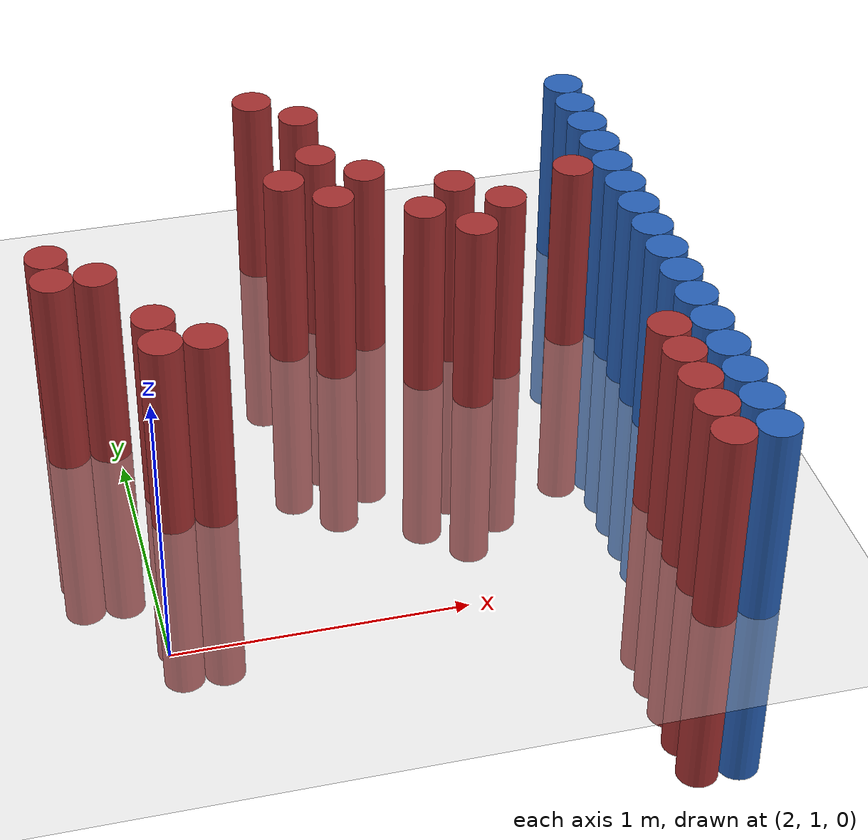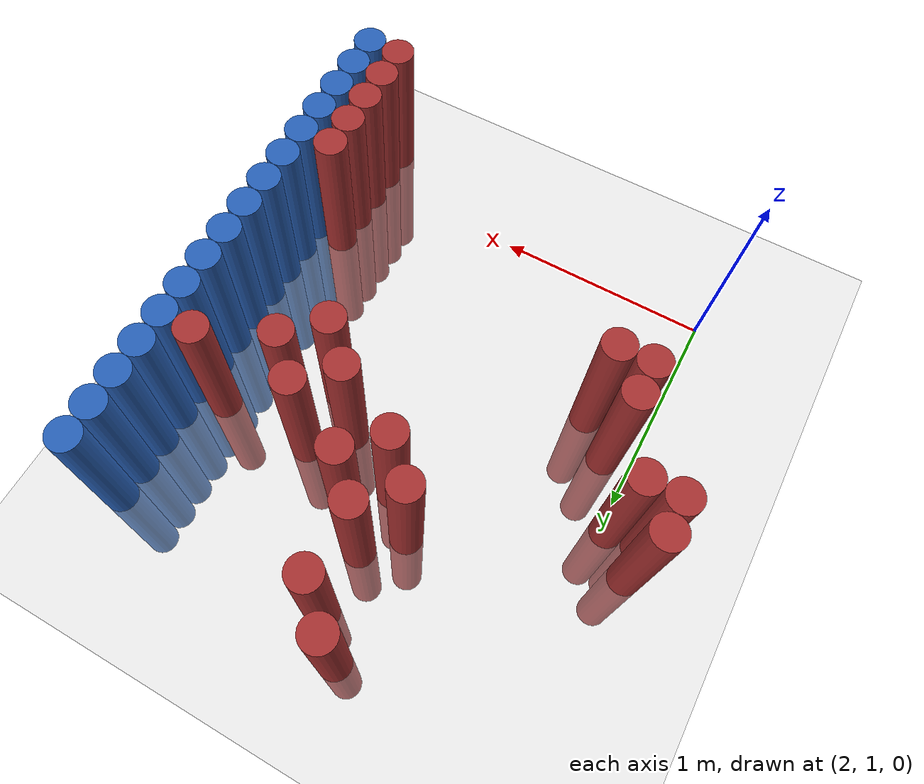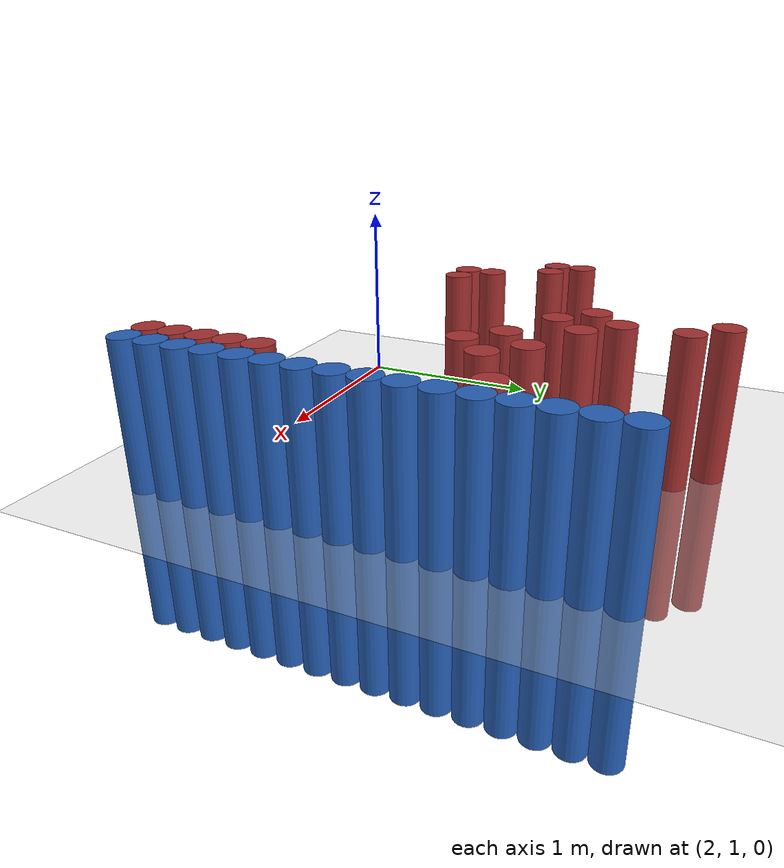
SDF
<sdf version="1.6">
 <world name="default">
  <model name="ground_plane">
   <static>1</static>
   <link name="link">
    <collision name="collision">
     <geometry><plane><normal>0 0 1</normal><size>100 100</size></plane></geometry>
     <surface><friction><ode><mu>100</mu><mu2>50</mu2></ode></friction></surface>
    </collision>
    <visual name="visual">
     <cast_shadows>0</cast_shadows>
     <geometry><plane><normal>0 0 1</normal><size>100 100</size></plane></geometry>
     <material>
      <script><uri>file://media/materials/scripts/gazebo.material</uri><name>Gazebo/Grey</name></script>
     </material>
    </visual>
   </link>
  </model>
  <model name="unit_cylinder_126">
   <static>1</static>
   <pose>3.925000 0.925000 0.000000 0.000000 0.000000 0.000000</pose>
   <link name="link">
    <inertial>
     <mass>1</mass>
     <inertia><ixx>0.145833</ixx><ixy>0</ixy><ixz>0</ixz><iyy>0.145833</iyy><iyz>0</iyz><izz>0.125</izz></inertia>
    </inertial>
    <collision name="collision">
     <geometry><cylinder><radius>0.075000</radius><length>1.5</length></cylinder></geometry>
    </collision>
    <visual name="visual">
     <geometry><cylinder><radius>0.075000</radius><length>1.5</length></cylinder></geometry>
     <material>
      <ambient>0.152000 0.379000 0.720000 1</ambient>
      <diffuse>0.152000 0.379000 0.720000 1</diffuse>
     </material>
     <material>
      <script><name>Gazebo/Grey</name><uri>file://media/materials/scripts/gazebo.material</uri></script>
     </material>
    </visual>
   </link>
  </model>
  <model name="unit_cylinder_128">
   <static>1</static>
   <pose>3.925000 1.075000 0.000000 0.000000 0.000000 0.000000</pose>
   <link name="link">
    <inertial>
     <mass>1</mass>
     <inertia><ixx>0.145833</ixx><ixy>0</ixy><ixz>0</ixz><iyy>0.145833</iyy><iyz>0</iyz><izz>0.125</izz></inertia>
    </inertial>
    <collision name="collision">
     <geometry><cylinder><radius>0.075000</radius><length>1.5</length></cylinder></geometry>
    </collision>
    <visual name="visual">
     <geometry><cylinder><radius>0.075000</radius><length>1.5</length></cylinder></geometry>
     <material>
      <ambient>0.152000 0.379000 0.720000 1</ambient>
      <diffuse>0.152000 0.379000 0.720000 1</diffuse>
     </material>
     <material>
      <script><name>Gazebo/Grey</name><uri>file://media/materials/scripts/gazebo.material</uri></script>
     </material>
    </visual>
   </link>
  </model>
  <model name="unit_cylinder_130">
   <static>1</static>
   <pose>3.925000 1.225000 0.000000 0.000000 0.000000 0.000000</pose>
   <link name="link">
    <inertial>
     <mass>1</mass>
     <inertia><ixx>0.145833</ixx><ixy>0</ixy><ixz>0</ixz><iyy>0.145833</iyy><iyz>0</iyz><izz>0.125</izz></inertia>
    </inertial>
    <collision name="collision">
     <geometry><cylinder><radius>0.075000</radius><length>1.5</length></cylinder></geometry>
    </collision>
    <visual name="visual">
     <geometry><cylinder><radius>0.075000</radius><length>1.5</length></cylinder></geometry>
     <material>
      <ambient>0.152000 0.379000 0.720000 1</ambient>
      <diffuse>0.152000 0.379000 0.720000 1</diffuse>
     </material>
     <material>
      <script><name>Gazebo/Grey</name><uri>file://media/materials/scripts/gazebo.material</uri></script>
     </material>
    </visual>
   </link>
  </model>
  <model name="unit_cylinder_132">
   <static>1</static>
   <pose>3.925000 1.375000 0.000000 0.000000 0.000000 0.000000</pose>
   <link name="link">
    <inertial>
     <mass>1</mass>
     <inertia><ixx>0.145833</ixx><ixy>0</ixy><ixz>0</ixz><iyy>0.145833</iyy><iyz>0</iyz><izz>0.125</izz></inertia>
    </inertial>
    <collision name="collision">
     <geometry><cylinder><radius>0.075000</radius><length>1.5</length></cylinder></geometry>
    </collision>
    <visual name="visual">
     <geometry><cylinder><radius>0.075000</radius><length>1.5</length></cylinder></geometry>
     <material>
      <ambient>0.152000 0.379000 0.720000 1</ambient>
      <diffuse>0.152000 0.379000 0.720000 1</diffuse>
     </material>
     <material>
      <script><name>Gazebo/Grey</name><uri>file://media/materials/scripts/gazebo.material</uri></script>
     </material>
    </visual>
   </link>
  </model>
  <model name="unit_cylinder_134">
   <static>1</static>
   <pose>3.925000 1.525000 0.000000 0.000000 0.000000 0.000000</pose>
   <link name="link">
    <inertial>
     <mass>1</mass>
     <inertia><ixx>0.145833</ixx><ixy>0</ixy><ixz>0</ixz><iyy>0.145833</iyy><iyz>0</iyz><izz>0.125</izz></inertia>
    </inertial>
    <collision name="collision">
     <geometry><cylinder><radius>0.075000</radius><length>1.5</length></cylinder></geometry>
    </collision>
    <visual name="visual">
     <geometry><cylinder><radius>0.075000</radius><length>1.5</length></cylinder></geometry>
     <material>
      <ambient>0.152000 0.379000 0.720000 1</ambient>
      <diffuse>0.152000 0.379000 0.720000 1</diffuse>
     </material>
     <material>
      <script><name>Gazebo/Grey</name><uri>file://media/materials/scripts/gazebo.material</uri></script>
     </material>
    </visual>
   </link>
  </model>
  <model name="unit_cylinder_136">
   <static>1</static>
   <pose>3.925000 1.675000 0.000000 0.000000 0.000000 0.000000</pose>
   <link name="link">
    <inertial>
     <mass>1</mass>
     <inertia><ixx>0.145833</ixx><ixy>0</ixy><ixz>0</ixz><iyy>0.145833</iyy><iyz>0</iyz><izz>0.125</izz></inertia>
    </inertial>
    <collision name="collision">
     <geometry><cylinder><radius>0.075000</radius><length>1.5</length></cylinder></geometry>
    </collision>
    <visual name="visual">
     <geometry><cylinder><radius>0.075000</radius><length>1.5</length></cylinder></geometry>
     <material>
      <ambient>0.152000 0.379000 0.720000 1</ambient>
      <diffuse>0.152000 0.379000 0.720000 1</diffuse>
     </material>
     <material>
      <script><name>Gazebo/Grey</name><uri>file://media/materials/scripts/gazebo.material</uri></script>
     </material>
    </visual>
   </link>
  </model>
  <model name="unit_cylinder_138">
   <static>1</static>
   <pose>3.925000 1.825000 0.000000 0.000000 0.000000 0.000000</pose>
   <link name="link">
    <inertial>
     <mass>1</mass>
     <inertia><ixx>0.145833</ixx><ixy>0</ixy><ixz>0</ixz><iyy>0.145833</iyy><iyz>0</iyz><izz>0.125</izz></inertia>
    </inertial>
    <collision name="collision">
     <geometry><cylinder><radius>0.075000</radius><length>1.5</length></cylinder></geometry>
    </collision>
    <visual name="visual">
     <geometry><cylinder><radius>0.075000</radius><length>1.5</length></cylinder></geometry>
     <material>
      <ambient>0.152000 0.379000 0.720000 1</ambient>
      <diffuse>0.152000 0.379000 0.720000 1</diffuse>
     </material>
     <material>
      <script><name>Gazebo/Grey</name><uri>file://media/materials/scripts/gazebo.material</uri></script>
     </material>
    </visual>
   </link>
  </model>
  <model name="unit_cylinder_140">
   <static>1</static>
   <pose>3.925000 1.975000 0.000000 0.000000 0.000000 0.000000</pose>
   <link name="link">
    <inertial>
     <mass>1</mass>
     <inertia><ixx>0.145833</ixx><ixy>0</ixy><ixz>0</ixz><iyy>0.145833</iyy><iyz>0</iyz><izz>0.125</izz></inertia>
    </inertial>
    <collision name="collision">
     <geometry><cylinder><radius>0.075000</radius><length>1.5</length></cylinder></geometry>
    </collision>
    <visual name="visual">
     <geometry><cylinder><radius>0.075000</radius><length>1.5</length></cylinder></geometry>
     <material>
      <ambient>0.152000 0.379000 0.720000 1</ambient>
      <diffuse>0.152000 0.379000 0.720000 1</diffuse>
     </material>
     <material>
      <script><name>Gazebo/Grey</name><uri>file://media/materials/scripts/gazebo.material</uri></script>
     </material>
    </visual>
   </link>
  </model>
  <model name="unit_cylinder_142">
   <static>1</static>
   <pose>3.925000 2.125000 0.000000 0.000000 0.000000 0.000000</pose>
   <link name="link">
    <inertial>
     <mass>1</mass>
     <inertia><ixx>0.145833</ixx><ixy>0</ixy><ixz>0</ixz><iyy>0.145833</iyy><iyz>0</iyz><izz>0.125</izz></inertia>
    </inertial>
    <collision name="collision">
     <geometry><cylinder><radius>0.075000</radius><length>1.5</length></cylinder></geometry>
    </collision>
    <visual name="visual">
     <geometry><cylinder><radius>0.075000</radius><length>1.5</length></cylinder></geometry>
     <material>
      <ambient>0.152000 0.379000 0.720000 1</ambient>
      <diffuse>0.152000 0.379000 0.720000 1</diffuse>
     </material>
     <material>
      <script><name>Gazebo/Grey</name><uri>file://media/materials/scripts/gazebo.material</uri></script>
     </material>
    </visual>
   </link>
  </model>
  <model name="unit_cylinder_144">
   <static>1</static>
   <pose>3.925000 2.275000 0.000000 0.000000 0.000000 0.000000</pose>
   <link name="link">
    <inertial>
     <mass>1</mass>
     <inertia><ixx>0.145833</ixx><ixy>0</ixy><ixz>0</ixz><iyy>0.145833</iyy><iyz>0</iyz><izz>0.125</izz></inertia>
    </inertial>
    <collision name="collision">
     <geometry><cylinder><radius>0.075000</radius><length>1.5</length></cylinder></geometry>
    </collision>
    <visual name="visual">
     <geometry><cylinder><radius>0.075000</radius><length>1.5</length></cylinder></geometry>
     <material>
      <ambient>0.152000 0.379000 0.720000 1</ambient>
      <diffuse>0.152000 0.379000 0.720000 1</diffuse>
     </material>
     <material>
      <script><name>Gazebo/Grey</name><uri>file://media/materials/scripts/gazebo.material</uri></script>
     </material>
    </visual>
   </link>
  </model>
  <model name="unit_cylinder_146">
   <static>1</static>
   <pose>3.925000 2.425000 0.000000 0.000000 0.000000 0.000000</pose>
   <link name="link">
    <inertial>
     <mass>1</mass>
     <inertia><ixx>0.145833</ixx><ixy>0</ixy><ixz>0</ixz><iyy>0.145833</iyy><iyz>0</iyz><izz>0.125</izz></inertia>
    </inertial>
    <collision name="collision">
     <geometry><cylinder><radius>0.075000</radius><length>1.5</length></cylinder></geometry>
    </collision>
    <visual name="visual">
     <geometry><cylinder><radius>0.075000</radius><length>1.5</length></cylinder></geometry>
     <material>
      <ambient>0.152000 0.379000 0.720000 1</ambient>
      <diffuse>0.152000 0.379000 0.720000 1</diffuse>
     </material>
     <material>
      <script><name>Gazebo/Grey</name><uri>file://media/materials/scripts/gazebo.material</uri></script>
     </material>
    </visual>
   </link>
  </model>
  <model name="unit_cylinder_148">
   <static>1</static>
   <pose>3.925000 2.575000 0.000000 0.000000 0.000000 0.000000</pose>
   <link name="link">
    <inertial>
     <mass>1</mass>
     <inertia><ixx>0.145833</ixx><ixy>0</ixy><ixz>0</ixz><iyy>0.145833</iyy><iyz>0</iyz><izz>0.125</izz></inertia>
    </inertial>
    <collision name="collision">
     <geometry><cylinder><radius>0.075000</radius><length>1.5</length></cylinder></geometry>
    </collision>
    <visual name="visual">
     <geometry><cylinder><radius>0.075000</radius><length>1.5</length></cylinder></geometry>
     <material>
      <ambient>0.152000 0.379000 0.720000 1</ambient>
      <diffuse>0.152000 0.379000 0.720000 1</diffuse>
     </material>
     <material>
      <script><name>Gazebo/Grey</name><uri>file://media/materials/scripts/gazebo.material</uri></script>
     </material>
    </visual>
   </link>
  </model>
  <model name="unit_cylinder_150">
   <static>1</static>
   <pose>3.925000 2.725000 0.000000 0.000000 0.000000 0.000000</pose>
   <link name="link">
    <inertial>
     <mass>1</mass>
     <inertia><ixx>0.145833</ixx><ixy>0</ixy><ixz>0</ixz><iyy>0.145833</iyy><iyz>0</iyz><izz>0.125</izz></inertia>
    </inertial>
    <collision name="collision">
     <geometry><cylinder><radius>0.075000</radius><length>1.5</length></cylinder></geometry>
    </collision>
    <visual name="visual">
     <geometry><cylinder><radius>0.075000</radius><length>1.5</length></cylinder></geometry>
     <material>
      <ambient>0.152000 0.379000 0.720000 1</ambient>
      <diffuse>0.152000 0.379000 0.720000 1</diffuse>
     </material>
     <material>
      <script><name>Gazebo/Grey</name><uri>file://media/materials/scripts/gazebo.material</uri></script>
     </material>
    </visual>
   </link>
  </model>
  <model name="unit_cylinder_152">
   <static>1</static>
   <pose>3.925000 2.875000 0.000000 0.000000 0.000000 0.000000</pose>
   <link name="link">
    <inertial>
     <mass>1</mass>
     <inertia><ixx>0.145833</ixx><ixy>0</ixy><ixz>0</ixz><iyy>0.145833</iyy><iyz>0</iyz><izz>0.125</izz></inertia>
    </inertial>
    <collision name="collision">
     <geometry><cylinder><radius>0.075000</radius><length>1.5</length></cylinder></geometry>
    </collision>
    <visual name="visual">
     <geometry><cylinder><radius>0.075000</radius><length>1.5</length></cylinder></geometry>
     <material>
      <ambient>0.152000 0.379000 0.720000 1</ambient>
      <diffuse>0.152000 0.379000 0.720000 1</diffuse>
     </material>
     <material>
      <script><name>Gazebo/Grey</name><uri>file://media/materials/scripts/gazebo.material</uri></script>
     </material>
    </visual>
   </link>
  </model>
  <model name="unit_cylinder_154">
   <static>1</static>
   <pose>3.925000 3.025000 0.000000 0.000000 0.000000 0.000000</pose>
   <link name="link">
    <inertial>
     <mass>1</mass>
     <inertia><ixx>0.145833</ixx><ixy>0</ixy><ixz>0</ixz><iyy>0.145833</iyy><iyz>0</iyz><izz>0.125</izz></inertia>
    </inertial>
    <collision name="collision">
     <geometry><cylinder><radius>0.075000</radius><length>1.5</length></cylinder></geometry>
    </collision>
    <visual name="visual">
     <geometry><cylinder><radius>0.075000</radius><length>1.5</length></cylinder></geometry>
     <material>
      <ambient>0.152000 0.379000 0.720000 1</ambient>
      <diffuse>0.152000 0.379000 0.720000 1</diffuse>
     </material>
     <material>
      <script><name>Gazebo/Grey</name><uri>file://media/materials/scripts/gazebo.material</uri></script>
     </material>
    </visual>
   </link>
  </model>
  <model name="unit_cylinder_336">
   <static>1</static>
   <pose>1.825000 2.125000 0.000000 0.000000 0.000000 0.000000</pose>
   <link name="link">
    <inertial>
     <mass>1</mass>
     <inertia><ixx>0.145833</ixx><ixy>0</ixy><ixz>0</ixz><iyy>0.145833</iyy><iyz>0</iyz><izz>0.125</izz></inertia>
    </inertial>
    <collision name="collision">
     <geometry><cylinder><radius>0.075000</radius><length>1.5</length></cylinder></geometry>
    </collision>
    <visual name="visual">
     <geometry><cylinder><radius>0.075000</radius><length>1.5</length></cylinder></geometry>
     <material>
      <ambient>0.648000 0.192000 0.192000 1</ambient>
      <diffuse>0.648000 0.192000 0.192000 1</diffuse>
     </material>
     <material>
      <script><name>Gazebo/Grey</name><uri>file://media/materials/scripts/gazebo.material</uri></script>
     </material>
    </visual>
   </link>
  </model>
  <model name="unit_cylinder_337">
   <static>1</static>
   <pose>1.825000 2.275000 0.000000 0.000000 0.000000 0.000000</pose>
   <link name="link">
    <inertial>
     <mass>1</mass>
     <inertia><ixx>0.145833</ixx><ixy>0</ixy><ixz>0</ixz><iyy>0.145833</iyy><iyz>0</iyz><izz>0.125</izz></inertia>
    </inertial>
    <collision name="collision">
     <geometry><cylinder><radius>0.075000</radius><length>1.5</length></cylinder></geometry>
    </collision>
    <visual name="visual">
     <geometry><cylinder><radius>0.075000</radius><length>1.5</length></cylinder></geometry>
     <material>
      <ambient>0.648000 0.192000 0.192000 1</ambient>
      <diffuse>0.648000 0.192000 0.192000 1</diffuse>
     </material>
     <material>
      <script><name>Gazebo/Grey</name><uri>file://media/materials/scripts/gazebo.material</uri></script>
     </material>
    </visual>
   </link>
  </model>
  <model name="unit_cylinder_340">
   <static>1</static>
   <pose>1.975000 2.125000 0.000000 0.000000 0.000000 0.000000</pose>
   <link name="link">
    <inertial>
     <mass>1</mass>
     <inertia><ixx>0.145833</ixx><ixy>0</ixy><ixz>0</ixz><iyy>0.145833</iyy><iyz>0</iyz><izz>0.125</izz></inertia>
    </inertial>
    <collision name="collision">
     <geometry><cylinder><radius>0.075000</radius><length>1.5</length></cylinder></geometry>
    </collision>
    <visual name="visual">
     <geometry><cylinder><radius>0.075000</radius><length>1.5</length></cylinder></geometry>
     <material>
      <ambient>0.648000 0.192000 0.192000 1</ambient>
      <diffuse>0.648000 0.192000 0.192000 1</diffuse>
     </material>
     <material>
      <script><name>Gazebo/Grey</name><uri>file://media/materials/scripts/gazebo.material</uri></script>
     </material>
    </visual>
   </link>
  </model>
  <model name="unit_cylinder_342">
   <static>1</static>
   <pose>2.125000 1.675000 0.000000 0.000000 0.000000 0.000000</pose>
   <link name="link">
    <inertial>
     <mass>1</mass>
     <inertia><ixx>0.145833</ixx><ixy>0</ixy><ixz>0</ixz><iyy>0.145833</iyy><iyz>0</iyz><izz>0.125</izz></inertia>
    </inertial>
    <collision name="collision">
     <geometry><cylinder><radius>0.075000</radius><length>1.5</length></cylinder></geometry>
    </collision>
    <visual name="visual">
     <geometry><cylinder><radius>0.075000</radius><length>1.5</length></cylinder></geometry>
     <material>
      <ambient>0.648000 0.192000 0.192000 1</ambient>
      <diffuse>0.648000 0.192000 0.192000 1</diffuse>
     </material>
     <material>
      <script><name>Gazebo/Grey</name><uri>file://media/materials/scripts/gazebo.material</uri></script>
     </material>
    </visual>
   </link>
  </model>
  <model name="unit_cylinder_343">
   <static>1</static>
   <pose>2.125000 1.825000 0.000000 0.000000 0.000000 0.000000</pose>
   <link name="link">
    <inertial>
     <mass>1</mass>
     <inertia><ixx>0.145833</ixx><ixy>0</ixy><ixz>0</ixz><iyy>0.145833</iyy><iyz>0</iyz><izz>0.125</izz></inertia>
    </inertial>
    <collision name="collision">
     <geometry><cylinder><radius>0.075000</radius><length>1.5</length></cylinder></geometry>
    </collision>
    <visual name="visual">
     <geometry><cylinder><radius>0.075000</radius><length>1.5</length></cylinder></geometry>
     <material>
      <ambient>0.648000 0.192000 0.192000 1</ambient>
      <diffuse>0.648000 0.192000 0.192000 1</diffuse>
     </material>
     <material>
      <script><name>Gazebo/Grey</name><uri>file://media/materials/scripts/gazebo.material</uri></script>
     </material>
    </visual>
   </link>
  </model>
  <model name="unit_cylinder_346">
   <static>1</static>
   <pose>2.275000 1.675000 0.000000 0.000000 0.000000 0.000000</pose>
   <link name="link">
    <inertial>
     <mass>1</mass>
     <inertia><ixx>0.145833</ixx><ixy>0</ixy><ixz>0</ixz><iyy>0.145833</iyy><iyz>0</iyz><izz>0.125</izz></inertia>
    </inertial>
    <collision name="collision">
     <geometry><cylinder><radius>0.075000</radius><length>1.5</length></cylinder></geometry>
    </collision>
    <visual name="visual">
     <geometry><cylinder><radius>0.075000</radius><length>1.5</length></cylinder></geometry>
     <material>
      <ambient>0.648000 0.192000 0.192000 1</ambient>
      <diffuse>0.648000 0.192000 0.192000 1</diffuse>
     </material>
     <material>
      <script><name>Gazebo/Grey</name><uri>file://media/materials/scripts/gazebo.material</uri></script>
     </material>
    </visual>
   </link>
  </model>
  <model name="unit_cylinder_347">
   <static>1</static>
   <pose>2.725000 2.575000 0.000000 0.000000 0.000000 0.000000</pose>
   <link name="link">
    <inertial>
     <mass>1</mass>
     <inertia><ixx>0.145833</ixx><ixy>0</ixy><ixz>0</ixz><iyy>0.145833</iyy><iyz>0</iyz><izz>0.125</izz></inertia>
    </inertial>
    <collision name="collision">
     <geometry><cylinder><radius>0.075000</radius><length>1.5</length></cylinder></geometry>
    </collision>
    <visual name="visual">
     <geometry><cylinder><radius>0.075000</radius><length>1.5</length></cylinder></geometry>
     <material>
      <ambient>0.648000 0.192000 0.192000 1</ambient>
      <diffuse>0.648000 0.192000 0.192000 1</diffuse>
     </material>
     <material>
      <script><name>Gazebo/Grey</name><uri>file://media/materials/scripts/gazebo.material</uri></script>
     </material>
    </visual>
   </link>
  </model>
  <model name="unit_cylinder_348">
   <static>1</static>
   <pose>2.725000 3.175000 0.000000 0.000000 0.000000 0.000000</pose>
   <link name="link">
    <inertial>
     <mass>1</mass>
     <inertia><ixx>0.145833</ixx><ixy>0</ixy><ixz>0</ixz><iyy>0.145833</iyy><iyz>0</iyz><izz>0.125</izz></inertia>
    </inertial>
    <collision name="collision">
     <geometry><cylinder><radius>0.075000</radius><length>1.5</length></cylinder></geometry>
    </collision>
    <visual name="visual">
     <geometry><cylinder><radius>0.075000</radius><length>1.5</length></cylinder></geometry>
     <material>
      <ambient>0.648000 0.192000 0.192000 1</ambient>
      <diffuse>0.648000 0.192000 0.192000 1</diffuse>
     </material>
     <material>
      <script><name>Gazebo/Grey</name><uri>file://media/materials/scripts/gazebo.material</uri></script>
     </material>
    </visual>
   </link>
  </model>
  <model name="unit_cylinder_349">
   <static>1</static>
   <pose>2.875000 2.425000 0.000000 0.000000 0.000000 0.000000</pose>
   <link name="link">
    <inertial>
     <mass>1</mass>
     <inertia><ixx>0.145833</ixx><ixy>0</ixy><ixz>0</ixz><iyy>0.145833</iyy><iyz>0</iyz><izz>0.125</izz></inertia>
    </inertial>
    <collision name="collision">
     <geometry><cylinder><radius>0.075000</radius><length>1.5</length></cylinder></geometry>
    </collision>
    <visual name="visual">
     <geometry><cylinder><radius>0.075000</radius><length>1.5</length></cylinder></geometry>
     <material>
      <ambient>0.648000 0.192000 0.192000 1</ambient>
      <diffuse>0.648000 0.192000 0.192000 1</diffuse>
     </material>
     <material>
      <script><name>Gazebo/Grey</name><uri>file://media/materials/scripts/gazebo.material</uri></script>
     </material>
    </visual>
   </link>
  </model>
  <model name="unit_cylinder_350">
   <static>1</static>
   <pose>2.875000 2.725000 0.000000 0.000000 0.000000 0.000000</pose>
   <link name="link">
    <inertial>
     <mass>1</mass>
     <inertia><ixx>0.145833</ixx><ixy>0</ixy><ixz>0</ixz><iyy>0.145833</iyy><iyz>0</iyz><izz>0.125</izz></inertia>
    </inertial>
    <collision name="collision">
     <geometry><cylinder><radius>0.075000</radius><length>1.5</length></cylinder></geometry>
    </collision>
    <visual name="visual">
     <geometry><cylinder><radius>0.075000</radius><length>1.5</length></cylinder></geometry>
     <material>
      <ambient>0.648000 0.192000 0.192000 1</ambient>
      <diffuse>0.648000 0.192000 0.192000 1</diffuse>
     </material>
     <material>
      <script><name>Gazebo/Grey</name><uri>file://media/materials/scripts/gazebo.material</uri></script>
     </material>
    </visual>
   </link>
  </model>
  <model name="unit_cylinder_351">
   <static>1</static>
   <pose>2.875000 3.025000 0.000000 0.000000 0.000000 0.000000</pose>
   <link name="link">
    <inertial>
     <mass>1</mass>
     <inertia><ixx>0.145833</ixx><ixy>0</ixy><ixz>0</ixz><iyy>0.145833</iyy><iyz>0</iyz><izz>0.125</izz></inertia>
    </inertial>
    <collision name="collision">
     <geometry><cylinder><radius>0.075000</radius><length>1.5</length></cylinder></geometry>
    </collision>
    <visual name="visual">
     <geometry><cylinder><radius>0.075000</radius><length>1.5</length></cylinder></geometry>
     <material>
      <ambient>0.648000 0.192000 0.192000 1</ambient>
      <diffuse>0.648000 0.192000 0.192000 1</diffuse>
     </material>
     <material>
      <script><name>Gazebo/Grey</name><uri>file://media/materials/scripts/gazebo.material</uri></script>
     </material>
    </visual>
   </link>
  </model>
  <model name="unit_cylinder_353">
   <static>1</static>
   <pose>3.025000 2.575000 0.000000 0.000000 0.000000 0.000000</pose>
   <link name="link">
    <inertial>
     <mass>1</mass>
     <inertia><ixx>0.145833</ixx><ixy>0</ixy><ixz>0</ixz><iyy>0.145833</iyy><iyz>0</iyz><izz>0.125</izz></inertia>
    </inertial>
    <collision name="collision">
     <geometry><cylinder><radius>0.075000</radius><length>1.5</length></cylinder></geometry>
    </collision>
    <visual name="visual">
     <geometry><cylinder><radius>0.075000</radius><length>1.5</length></cylinder></geometry>
     <material>
      <ambient>0.648000 0.192000 0.192000 1</ambient>
      <diffuse>0.648000 0.192000 0.192000 1</diffuse>
     </material>
     <material>
      <script><name>Gazebo/Grey</name><uri>file://media/materials/scripts/gazebo.material</uri></script>
     </material>
    </visual>
   </link>
  </model>
  <model name="unit_cylinder_354">
   <static>1</static>
   <pose>3.175000 2.275000 0.000000 0.000000 0.000000 0.000000</pose>
   <link name="link">
    <inertial>
     <mass>1</mass>
     <inertia><ixx>0.145833</ixx><ixy>0</ixy><ixz>0</ixz><iyy>0.145833</iyy><iyz>0</iyz><izz>0.125</izz></inertia>
    </inertial>
    <collision name="collision">
     <geometry><cylinder><radius>0.075000</radius><length>1.5</length></cylinder></geometry>
    </collision>
    <visual name="visual">
     <geometry><cylinder><radius>0.075000</radius><length>1.5</length></cylinder></geometry>
     <material>
      <ambient>0.648000 0.192000 0.192000 1</ambient>
      <diffuse>0.648000 0.192000 0.192000 1</diffuse>
     </material>
     <material>
      <script><name>Gazebo/Grey</name><uri>file://media/materials/scripts/gazebo.material</uri></script>
     </material>
    </visual>
   </link>
  </model>
  <model name="unit_cylinder_355">
   <static>1</static>
   <pose>3.325000 2.125000 0.000000 0.000000 0.000000 0.000000</pose>
   <link name="link">
    <inertial>
     <mass>1</mass>
     <inertia><ixx>0.145833</ixx><ixy>0</ixy><ixz>0</ixz><iyy>0.145833</iyy><iyz>0</iyz><izz>0.125</izz></inertia>
    </inertial>
    <collision name="collision">
     <geometry><cylinder><radius>0.075000</radius><length>1.5</length></cylinder></geometry>
    </collision>
    <visual name="visual">
     <geometry><cylinder><radius>0.075000</radius><length>1.5</length></cylinder></geometry>
     <material>
      <ambient>0.648000 0.192000 0.192000 1</ambient>
      <diffuse>0.648000 0.192000 0.192000 1</diffuse>
     </material>
     <material>
      <script><name>Gazebo/Grey</name><uri>file://media/materials/scripts/gazebo.material</uri></script>
     </material>
    </visual>
   </link>
  </model>
  <model name="unit_cylinder_356">
   <static>1</static>
   <pose>3.325000 2.425000 0.000000 0.000000 0.000000 0.000000</pose>
   <link name="link">
    <inertial>
     <mass>1</mass>
     <inertia><ixx>0.145833</ixx><ixy>0</ixy><ixz>0</ixz><iyy>0.145833</iyy><iyz>0</iyz><izz>0.125</izz></inertia>
    </inertial>
    <collision name="collision">
     <geometry><cylinder><radius>0.075000</radius><length>1.5</length></cylinder></geometry>
    </collision>
    <visual name="visual">
     <geometry><cylinder><radius>0.075000</radius><length>1.5</length></cylinder></geometry>
     <material>
      <ambient>0.648000 0.192000 0.192000 1</ambient>
      <diffuse>0.648000 0.192000 0.192000 1</diffuse>
     </material>
     <material>
      <script><name>Gazebo/Grey</name><uri>file://media/materials/scripts/gazebo.material</uri></script>
     </material>
    </visual>
   </link>
  </model>
  <model name="unit_cylinder_357">
   <static>1</static>
   <pose>3.475000 2.275000 0.000000 0.000000 0.000000 0.000000</pose>
   <link name="link">
    <inertial>
     <mass>1</mass>
     <inertia><ixx>0.145833</ixx><ixy>0</ixy><ixz>0</ixz><iyy>0.145833</iyy><iyz>0</iyz><izz>0.125</izz></inertia>
    </inertial>
    <collision name="collision">
     <geometry><cylinder><radius>0.075000</radius><length>1.5</length></cylinder></geometry>
    </collision>
    <visual name="visual">
     <geometry><cylinder><radius>0.075000</radius><length>1.5</length></cylinder></geometry>
     <material>
      <ambient>0.648000 0.192000 0.192000 1</ambient>
      <diffuse>0.648000 0.192000 0.192000 1</diffuse>
     </material>
     <material>
      <script><name>Gazebo/Grey</name><uri>file://media/materials/scripts/gazebo.material</uri></script>
     </material>
    </visual>
   </link>
  </model>
  <model name="unit_cylinder_360">
   <static>1</static>
   <pose>3.775000 0.775000 0.000000 0.000000 0.000000 0.000000</pose>
   <link name="link">
    <inertial>
     <mass>1</mass>
     <inertia><ixx>0.145833</ixx><ixy>0</ixy><ixz>0</ixz><iyy>0.145833</iyy><iyz>0</iyz><izz>0.125</izz></inertia>
    </inertial>
    <collision name="collision">
     <geometry><cylinder><radius>0.075000</radius><length>1.5</length></cylinder></geometry>
    </collision>
    <visual name="visual">
     <geometry><cylinder><radius>0.075000</radius><length>1.5</length></cylinder></geometry>
     <material>
      <ambient>0.648000 0.192000 0.192000 1</ambient>
      <diffuse>0.648000 0.192000 0.192000 1</diffuse>
     </material>
     <material>
      <script><name>Gazebo/Grey</name><uri>file://media/materials/scripts/gazebo.material</uri></script>
     </material>
    </visual>
   </link>
  </model>
  <model name="unit_cylinder_361">
   <static>1</static>
   <pose>3.775000 0.925000 0.000000 0.000000 0.000000 0.000000</pose>
   <link name="link">
    <inertial>
     <mass>1</mass>
     <inertia><ixx>0.145833</ixx><ixy>0</ixy><ixz>0</ixz><iyy>0.145833</iyy><iyz>0</iyz><izz>0.125</izz></inertia>
    </inertial>
    <collision name="collision">
     <geometry><cylinder><radius>0.075000</radius><length>1.5</length></cylinder></geometry>
    </collision>
    <visual name="visual">
     <geometry><cylinder><radius>0.075000</radius><length>1.5</length></cylinder></geometry>
     <material>
      <ambient>0.648000 0.192000 0.192000 1</ambient>
      <diffuse>0.648000 0.192000 0.192000 1</diffuse>
     </material>
     <material>
      <script><name>Gazebo/Grey</name><uri>file://media/materials/scripts/gazebo.material</uri></script>
     </material>
    </visual>
   </link>
  </model>
  <model name="unit_cylinder_362">
   <static>1</static>
   <pose>3.775000 1.075000 0.000000 0.000000 0.000000 0.000000</pose>
   <link name="link">
    <inertial>
     <mass>1</mass>
     <inertia><ixx>0.145833</ixx><ixy>0</ixy><ixz>0</ixz><iyy>0.145833</iyy><iyz>0</iyz><izz>0.125</izz></inertia>
    </inertial>
    <collision name="collision">
     <geometry><cylinder><radius>0.075000</radius><length>1.5</length></cylinder></geometry>
    </collision>
    <visual name="visual">
     <geometry><cylinder><radius>0.075000</radius><length>1.5</length></cylinder></geometry>
     <material>
      <ambient>0.648000 0.192000 0.192000 1</ambient>
      <diffuse>0.648000 0.192000 0.192000 1</diffuse>
     </material>
     <material>
      <script><name>Gazebo/Grey</name><uri>file://media/materials/scripts/gazebo.material</uri></script>
     </material>
    </visual>
   </link>
  </model>
  <model name="unit_cylinder_363">
   <static>1</static>
   <pose>3.775000 1.225000 0.000000 0.000000 0.000000 0.000000</pose>
   <link name="link">
    <inertial>
     <mass>1</mass>
     <inertia><ixx>0.145833</ixx><ixy>0</ixy><ixz>0</ixz><iyy>0.145833</iyy><iyz>0</iyz><izz>0.125</izz></inertia>
    </inertial>
    <collision name="collision">
     <geometry><cylinder><radius>0.075000</radius><length>1.5</length></cylinder></geometry>
    </collision>
    <visual name="visual">
     <geometry><cylinder><radius>0.075000</radius><length>1.5</length></cylinder></geometry>
     <material>
      <ambient>0.648000 0.192000 0.192000 1</ambient>
      <diffuse>0.648000 0.192000 0.192000 1</diffuse>
     </material>
     <material>
      <script><name>Gazebo/Grey</name><uri>file://media/materials/scripts/gazebo.material</uri></script>
     </material>
    </visual>
   </link>
  </model>
  <model name="unit_cylinder_364">
   <static>1</static>
   <pose>3.775000 1.375000 0.000000 0.000000 0.000000 0.000000</pose>
   <link name="link">
    <inertial>
     <mass>1</mass>
     <inertia><ixx>0.145833</ixx><ixy>0</ixy><ixz>0</ixz><iyy>0.145833</iyy><iyz>0</iyz><izz>0.125</izz></inertia>
    </inertial>
    <collision name="collision">
     <geometry><cylinder><radius>0.075000</radius><length>1.5</length></cylinder></geometry>
    </collision>
    <visual name="visual">
     <geometry><cylinder><radius>0.075000</radius><length>1.5</length></cylinder></geometry>
     <material>
      <ambient>0.648000 0.192000 0.192000 1</ambient>
      <diffuse>0.648000 0.192000 0.192000 1</diffuse>
     </material>
     <material>
      <script><name>Gazebo/Grey</name><uri>file://media/materials/scripts/gazebo.material</uri></script>
     </material>
    </visual>
   </link>
  </model>
  <model name="unit_cylinder_365">
   <static>1</static>
   <pose>3.775000 2.425000 0.000000 0.000000 0.000000 0.000000</pose>
   <link name="link">
    <inertial>
     <mass>1</mass>
     <inertia><ixx>0.145833</ixx><ixy>0</ixy><ixz>0</ixz><iyy>0.145833</iyy><iyz>0</iyz><izz>0.125</izz></inertia>
    </inertial>
    <collision name="collision">
     <geometry><cylinder><radius>0.075000</radius><length>1.5</length></cylinder></geometry>
    </collision>
    <visual name="visual">
     <geometry><cylinder><radius>0.075000</radius><length>1.5</length></cylinder></geometry>
     <material>
      <ambient>0.648000 0.192000 0.192000 1</ambient>
      <diffuse>0.648000 0.192000 0.192000 1</diffuse>
     </material>
     <material>
      <script><name>Gazebo/Grey</name><uri>file://media/materials/scripts/gazebo.material</uri></script>
     </material>
    </visual>
   </link>
  </model>
  <model name="unit_cylinder_392">
   <static>1</static>
   <pose>3.925000 0.775000 0.000000 0.000000 0.000000 0.000000</pose>
   <link name="link">
    <inertial>
     <mass>1</mass>
     <inertia><ixx>0.145833</ixx><ixy>0</ixy><ixz>0</ixz><iyy>0.145833</iyy><iyz>0</iyz><izz>0.125</izz></inertia>
    </inertial>
    <collision name="collision">
     <geometry><cylinder><radius>0.075000</radius><length>1.5</length></cylinder></geometry>
    </collision>
    <visual name="visual">
     <geometry><cylinder><radius>0.075000</radius><length>1.5</length></cylinder></geometry>
     <material>
      <ambient>0.152000 0.379000 0.720000 1</ambient>
      <diffuse>0.152000 0.379000 0.720000 1</diffuse>
     </material>
     <material>
      <script><name>Gazebo/Grey</name><uri>file://media/materials/scripts/gazebo.material</uri></script>
     </material>
    </visual>
   </link>
  </model>
  <model name="unit_cylinder_393">
   <static>1</static>
   <pose>3.925000 0.925000 0.000000 0.000000 0.000000 0.000000</pose>
   <link name="link">
    <inertial>
     <mass>1</mass>
     <inertia><ixx>0.145833</ixx><ixy>0</ixy><ixz>0</ixz><iyy>0.145833</iyy><iyz>0</iyz><izz>0.125</izz></inertia>
    </inertial>
    <collision name="collision">
     <geometry><cylinder><radius>0.075000</radius><length>1.5</length></cylinder></geometry>
    </collision>
    <visual name="visual">
     <geometry><cylinder><radius>0.075000</radius><length>1.5</length></cylinder></geometry>
     <material>
      <ambient>0.152000 0.379000 0.720000 1</ambient>
      <diffuse>0.152000 0.379000 0.720000 1</diffuse>
     </material>
     <material>
      <script><name>Gazebo/Grey</name><uri>file://media/materials/scripts/gazebo.material</uri></script>
     </material>
    </visual>
   </link>
  </model>
  <model name="unit_cylinder_394">
   <static>1</static>
   <pose>3.925000 1.075000 0.000000 0.000000 0.000000 0.000000</pose>
   <link name="link">
    <inertial>
     <mass>1</mass>
     <inertia><ixx>0.145833</ixx><ixy>0</ixy><ixz>0</ixz><iyy>0.145833</iyy><iyz>0</iyz><izz>0.125</izz></inertia>
    </inertial>
    <collision name="collision">
     <geometry><cylinder><radius>0.075000</radius><length>1.5</length></cylinder></geometry>
    </collision>
    <visual name="visual">
     <geometry><cylinder><radius>0.075000</radius><length>1.5</length></cylinder></geometry>
     <material>
      <ambient>0.152000 0.379000 0.720000 1</ambient>
      <diffuse>0.152000 0.379000 0.720000 1</diffuse>
     </material>
     <material>
      <script><name>Gazebo/Grey</name><uri>file://media/materials/scripts/gazebo.material</uri></script>
     </material>
    </visual>
   </link>
  </model>
  <model name="unit_cylinder_395">
   <static>1</static>
   <pose>3.925000 1.225000 0.000000 0.000000 0.000000 0.000000</pose>
   <link name="link">
    <inertial>
     <mass>1</mass>
     <inertia><ixx>0.145833</ixx><ixy>0</ixy><ixz>0</ixz><iyy>0.145833</iyy><iyz>0</iyz><izz>0.125</izz></inertia>
    </inertial>
    <collision name="collision">
     <geometry><cylinder><radius>0.075000</radius><length>1.5</length></cylinder></geometry>
    </collision>
    <visual name="visual">
     <geometry><cylinder><radius>0.075000</radius><length>1.5</length></cylinder></geometry>
     <material>
      <ambient>0.152000 0.379000 0.720000 1</ambient>
      <diffuse>0.152000 0.379000 0.720000 1</diffuse>
     </material>
     <material>
      <script><name>Gazebo/Grey</name><uri>file://media/materials/scripts/gazebo.material</uri></script>
     </material>
    </visual>
   </link>
  </model>
  <model name="unit_cylinder_396">
   <static>1</static>
   <pose>3.925000 1.375000 0.000000 0.000000 0.000000 0.000000</pose>
   <link name="link">
    <inertial>
     <mass>1</mass>
     <inertia><ixx>0.145833</ixx><ixy>0</ixy><ixz>0</ixz><iyy>0.145833</iyy><iyz>0</iyz><izz>0.125</izz></inertia>
    </inertial>
    <collision name="collision">
     <geometry><cylinder><radius>0.075000</radius><length>1.5</length></cylinder></geometry>
    </collision>
    <visual name="visual">
     <geometry><cylinder><radius>0.075000</radius><length>1.5</length></cylinder></geometry>
     <material>
      <ambient>0.152000 0.379000 0.720000 1</ambient>
      <diffuse>0.152000 0.379000 0.720000 1</diffuse>
     </material>
     <material>
      <script><name>Gazebo/Grey</name><uri>file://media/materials/scripts/gazebo.material</uri></script>
     </material>
    </visual>
   </link>
  </model>
  <model name="unit_cylinder_397">
   <static>1</static>
   <pose>3.925000 1.525000 0.000000 0.000000 0.000000 0.000000</pose>
   <link name="link">
    <inertial>
     <mass>1</mass>
     <inertia><ixx>0.145833</ixx><ixy>0</ixy><ixz>0</ixz><iyy>0.145833</iyy><iyz>0</iyz><izz>0.125</izz></inertia>
    </inertial>
    <collision name="collision">
     <geometry><cylinder><radius>0.075000</radius><length>1.5</length></cylinder></geometry>
    </collision>
    <visual name="visual">
     <geometry><cylinder><radius>0.075000</radius><length>1.5</length></cylinder></geometry>
     <material>
      <ambient>0.152000 0.379000 0.720000 1</ambient>
      <diffuse>0.152000 0.379000 0.720000 1</diffuse>
     </material>
     <material>
      <script><name>Gazebo/Grey</name><uri>file://media/materials/scripts/gazebo.material</uri></script>
     </material>
    </visual>
   </link>
  </model>
  <model name="unit_cylinder_398">
   <static>1</static>
   <pose>3.925000 1.675000 0.000000 0.000000 0.000000 0.000000</pose>
   <link name="link">
    <inertial>
     <mass>1</mass>
     <inertia><ixx>0.145833</ixx><ixy>0</ixy><ixz>0</ixz><iyy>0.145833</iyy><iyz>0</iyz><izz>0.125</izz></inertia>
    </inertial>
    <collision name="collision">
     <geometry><cylinder><radius>0.075000</radius><length>1.5</length></cylinder></geometry>
    </collision>
    <visual name="visual">
     <geometry><cylinder><radius>0.075000</radius><length>1.5</length></cylinder></geometry>
     <material>
      <ambient>0.152000 0.379000 0.720000 1</ambient>
      <diffuse>0.152000 0.379000 0.720000 1</diffuse>
     </material>
     <material>
      <script><name>Gazebo/Grey</name><uri>file://media/materials/scripts/gazebo.material</uri></script>
     </material>
    </visual>
   </link>
  </model>
  <model name="unit_cylinder_399">
   <static>1</static>
   <pose>3.925000 1.825000 0.000000 0.000000 0.000000 0.000000</pose>
   <link name="link">
    <inertial>
     <mass>1</mass>
     <inertia><ixx>0.145833</ixx><ixy>0</ixy><ixz>0</ixz><iyy>0.145833</iyy><iyz>0</iyz><izz>0.125</izz></inertia>
    </inertial>
    <collision name="collision">
     <geometry><cylinder><radius>0.075000</radius><length>1.5</length></cylinder></geometry>
    </collision>
    <visual name="visual">
     <geometry><cylinder><radius>0.075000</radius><length>1.5</length></cylinder></geometry>
     <material>
      <ambient>0.152000 0.379000 0.720000 1</ambient>
      <diffuse>0.152000 0.379000 0.720000 1</diffuse>
     </material>
     <material>
      <script><name>Gazebo/Grey</name><uri>file://media/materials/scripts/gazebo.material</uri></script>
     </material>
    </visual>
   </link>
  </model>
  <model name="unit_cylinder_400">
   <static>1</static>
   <pose>3.925000 1.975000 0.000000 0.000000 0.000000 0.000000</pose>
   <link name="link">
    <inertial>
     <mass>1</mass>
     <inertia><ixx>0.145833</ixx><ixy>0</ixy><ixz>0</ixz><iyy>0.145833</iyy><iyz>0</iyz><izz>0.125</izz></inertia>
    </inertial>
    <collision name="collision">
     <geometry><cylinder><radius>0.075000</radius><length>1.5</length></cylinder></geometry>
    </collision>
    <visual name="visual">
     <geometry><cylinder><radius>0.075000</radius><length>1.5</length></cylinder></geometry>
     <material>
      <ambient>0.152000 0.379000 0.720000 1</ambient>
      <diffuse>0.152000 0.379000 0.720000 1</diffuse>
     </material>
     <material>
      <script><name>Gazebo/Grey</name><uri>file://media/materials/scripts/gazebo.material</uri></script>
     </material>
    </visual>
   </link>
  </model>
  <model name="unit_cylinder_401">
   <static>1</static>
   <pose>3.925000 2.125000 0.000000 0.000000 0.000000 0.000000</pose>
   <link name="link">
    <inertial>
     <mass>1</mass>
     <inertia><ixx>0.145833</ixx><ixy>0</ixy><ixz>0</ixz><iyy>0.145833</iyy><iyz>0</iyz><izz>0.125</izz></inertia>
    </inertial>
    <collision name="collision">
     <geometry><cylinder><radius>0.075000</radius><length>1.5</length></cylinder></geometry>
    </collision>
    <visual name="visual">
     <geometry><cylinder><radius>0.075000</radius><length>1.5</length></cylinder></geometry>
     <material>
      <ambient>0.152000 0.379000 0.720000 1</ambient>
      <diffuse>0.152000 0.379000 0.720000 1</diffuse>
     </material>
     <material>
      <script><name>Gazebo/Grey</name><uri>file://media/materials/scripts/gazebo.material</uri></script>
     </material>
    </visual>
   </link>
  </model>
  <model name="unit_cylinder_402">
   <static>1</static>
   <pose>3.925000 2.275000 0.000000 0.000000 0.000000 0.000000</pose>
   <link name="link">
    <inertial>
     <mass>1</mass>
     <inertia><ixx>0.145833</ixx><ixy>0</ixy><ixz>0</ixz><iyy>0.145833</iyy><iyz>0</iyz><izz>0.125</izz></inertia>
    </inertial>
    <collision name="collision">
     <geometry><cylinder><radius>0.075000</radius><length>1.5</length></cylinder></geometry>
    </collision>
    <visual name="visual">
     <geometry><cylinder><radius>0.075000</radius><length>1.5</length></cylinder></geometry>
     <material>
      <ambient>0.152000 0.379000 0.720000 1</ambient>
      <diffuse>0.152000 0.379000 0.720000 1</diffuse>
     </material>
     <material>
      <script><name>Gazebo/Grey</name><uri>file://media/materials/scripts/gazebo.material</uri></script>
     </material>
    </visual>
   </link>
  </model>
  <model name="unit_cylinder_403">
   <static>1</static>
   <pose>3.925000 2.425000 0.000000 0.000000 0.000000 0.000000</pose>
   <link name="link">
    <inertial>
     <mass>1</mass>
     <inertia><ixx>0.145833</ixx><ixy>0</ixy><ixz>0</ixz><iyy>0.145833</iyy><iyz>0</iyz><izz>0.125</izz></inertia>
    </inertial>
    <collision name="collision">
     <geometry><cylinder><radius>0.075000</radius><length>1.5</length></cylinder></geometry>
    </collision>
    <visual name="visual">
     <geometry><cylinder><radius>0.075000</radius><length>1.5</length></cylinder></geometry>
     <material>
      <ambient>0.152000 0.379000 0.720000 1</ambient>
      <diffuse>0.152000 0.379000 0.720000 1</diffuse>
     </material>
     <material>
      <script><name>Gazebo/Grey</name><uri>file://media/materials/scripts/gazebo.material</uri></script>
     </material>
    </visual>
   </link>
  </model>
  <model name="unit_cylinder_404">
   <static>1</static>
   <pose>3.925000 2.575000 0.000000 0.000000 0.000000 0.000000</pose>
   <link name="link">
    <inertial>
     <mass>1</mass>
     <inertia><ixx>0.145833</ixx><ixy>0</ixy><ixz>0</ixz><iyy>0.145833</iyy><iyz>0</iyz><izz>0.125</izz></inertia>
    </inertial>
    <collision name="collision">
     <geometry><cylinder><radius>0.075000</radius><length>1.5</length></cylinder></geometry>
    </collision>
    <visual name="visual">
     <geometry><cylinder><radius>0.075000</radius><length>1.5</length></cylinder></geometry>
     <material>
      <ambient>0.152000 0.379000 0.720000 1</ambient>
      <diffuse>0.152000 0.379000 0.720000 1</diffuse>
     </material>
     <material>
      <script><name>Gazebo/Grey</name><uri>file://media/materials/scripts/gazebo.material</uri></script>
     </material>
    </visual>
   </link>
  </model>
  <model name="unit_cylinder_405">
   <static>1</static>
   <pose>3.925000 2.725000 0.000000 0.000000 0.000000 0.000000</pose>
   <link name="link">
    <inertial>
     <mass>1</mass>
     <inertia><ixx>0.145833</ixx><ixy>0</ixy><ixz>0</ixz><iyy>0.145833</iyy><iyz>0</iyz><izz>0.125</izz></inertia>
    </inertial>
    <collision name="collision">
     <geometry><cylinder><radius>0.075000</radius><length>1.5</length></cylinder></geometry>
    </collision>
    <visual name="visual">
     <geometry><cylinder><radius>0.075000</radius><length>1.5</length></cylinder></geometry>
     <material>
      <ambient>0.152000 0.379000 0.720000 1</ambient>
      <diffuse>0.152000 0.379000 0.720000 1</diffuse>
     </material>
     <material>
      <script><name>Gazebo/Grey</name><uri>file://media/materials/scripts/gazebo.material</uri></script>
     </material>
    </visual>
   </link>
  </model>
  <model name="unit_cylinder_406">
   <static>1</static>
   <pose>3.925000 2.875000 0.000000 0.000000 0.000000 0.000000</pose>
   <link name="link">
    <inertial>
     <mass>1</mass>
     <inertia><ixx>0.145833</ixx><ixy>0</ixy><ixz>0</ixz><iyy>0.145833</iyy><iyz>0</iyz><izz>0.125</izz></inertia>
    </inertial>
    <collision name="collision">
     <geometry><cylinder><radius>0.075000</radius><length>1.5</length></cylinder></geometry>
    </collision>
    <visual name="visual">
     <geometry><cylinder><radius>0.075000</radius><length>1.5</length></cylinder></geometry>
     <material>
      <ambient>0.152000 0.379000 0.720000 1</ambient>
      <diffuse>0.152000 0.379000 0.720000 1</diffuse>
     </material>
     <material>
      <script><name>Gazebo/Grey</name><uri>file://media/materials/scripts/gazebo.material</uri></script>
     </material>
    </visual>
   </link>
  </model>
  <model name="unit_cylinder_407">
   <static>1</static>
   <pose>3.925000 3.025000 0.000000 0.000000 0.000000 0.000000</pose>
   <link name="link">
    <inertial>
     <mass>1</mass>
     <inertia><ixx>0.145833</ixx><ixy>0</ixy><ixz>0</ixz><iyy>0.145833</iyy><iyz>0</iyz><izz>0.125</izz></inertia>
    </inertial>
    <collision name="collision">
     <geometry><cylinder><radius>0.075000</radius><length>1.5</length></cylinder></geometry>
    </collision>
    <visual name="visual">
     <geometry><cylinder><radius>0.075000</radius><length>1.5</length></cylinder></geometry>
     <material>
      <ambient>0.152000 0.379000 0.720000 1</ambient>
      <diffuse>0.152000 0.379000 0.720000 1</diffuse>
     </material>
     <material>
      <script><name>Gazebo/Grey</name><uri>file://media/materials/scripts/gazebo.material</uri></script>
     </material>
    </visual>
   </link>
  </model>
 </world>
</sdf>
